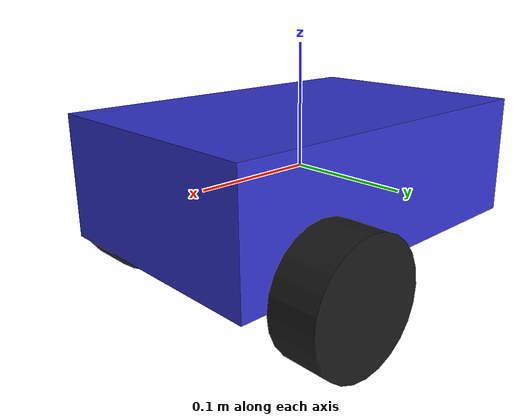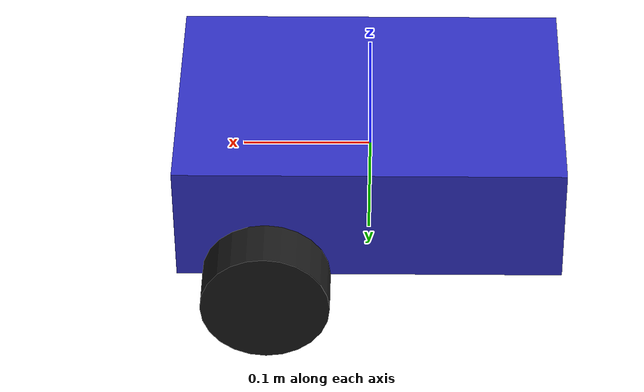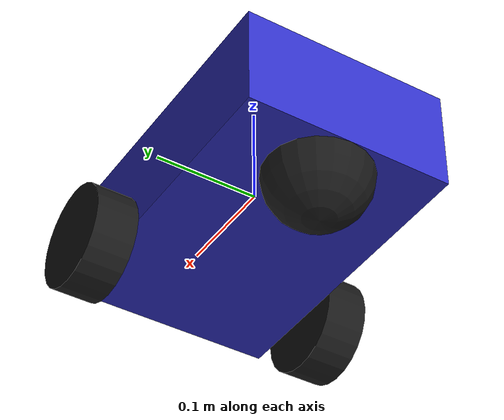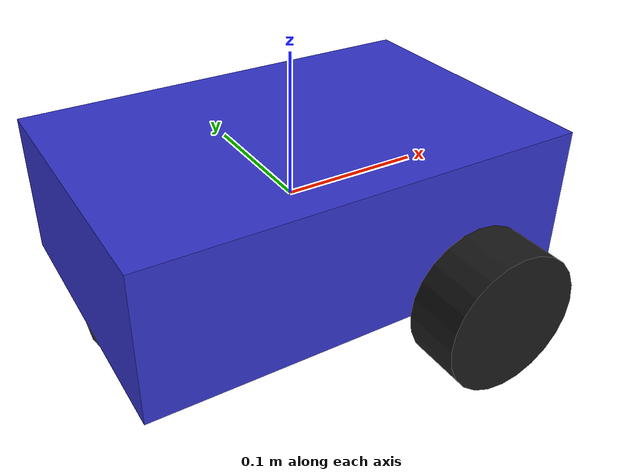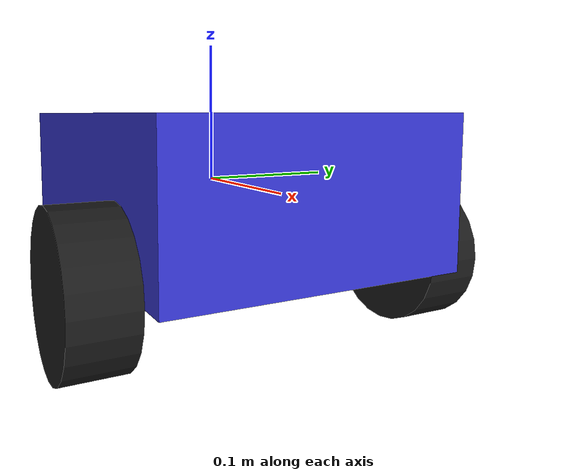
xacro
<?xml version="1.0"?>
<robot xmlns:xacro="http://www.ros.org/wiki/xacro" name="basicbot">

  <!-- Base Link -->
  <link name="base_link">
    <pose>0 0 0.1 0 0 0</pose>

    <inertial>
      <mass value="2.0"/>
      <inertia ixx="0.008333" ixy="0.0" ixz="0.0" iyy="0.016666" iyz="0.0" izz="0.021666"/>
    </inertial>

    <visual name="chassis_visual">
      <geometry>
        <box size="0.3 0.2 0.1"/>
      </geometry>
      <material name="blue">
        <color rgba="0.2 0.2 0.8 1.0"/>
      </material>
    </visual>

    <collision name="chassis_collision">
      <geometry>
        <box size="0.3 0.2 0.1"/>
      </geometry>
    </collision>

    <!-- Caster wheel -->
    <visual name="caster_visual">
      <origin xyz="-0.1 0 -0.05" rpy="0 0 0"/>
      <geometry>
        <sphere radius="0.05"/>
      </geometry>
      <material name="dark">
        <color rgba="0.1 0.1 0.1 1.0"/>
      </material>
    </visual>

    <collision name="caster_collision">
      <origin xyz="-0.1 0 -0.05" rpy="0 0 0"/>
      <geometry>
        <sphere radius="0.05"/>
      </geometry>
    </collision>
  </link>

  <!-- Left Wheel -->
  <link name="left_wheel">
    <inertial>
      <mass value="0.2"/>
      <inertia ixx="0.0001316" ixy="0.0" ixz="0.0" iyy="0.0001316" iyz="0.0" izz="0.00025"/>
    </inertial>
    <visual name="left_wheel_visual">
      <geometry>
        <cylinder radius="0.05" length="0.04"/>
      </geometry>
      <material name="dark">
        <color rgba="0.1 0.1 0.1 1.0"/>
      </material>
    </visual>
    <collision name="left_wheel_collision">
      <geometry>
        <cylinder radius="0.05" length="0.04"/>
      </geometry>
    </collision>
  </link>

  <!-- Right Wheel -->
  <link name="right_wheel">
    <inertial>
      <mass value="0.2"/>
      <inertia ixx="0.0001316" ixy="0.0" ixz="0.0" iyy="0.0001316" iyz="0.0" izz="0.00025"/>
    </inertial>
    <visual name="right_wheel_visual">
      <geometry>
        <cylinder radius="0.05" length="0.04"/>
      </geometry>
      <material name="dark">
        <color rgba="0.1 0.1 0.1 1.0"/>
      </material>
    </visual>
    <collision name="right_wheel_collision">
      <geometry>
        <cylinder radius="0.05" length="0.04"/>
      </geometry>
    </collision>
  </link>

  <!-- Joints -->
  <joint name="left_wheel_joint" type="continuous">
    <parent link="base_link"/>
    <child link="left_wheel"/>
    <origin xyz="0.08 0.12 -0.05" rpy="-1.57079632679 0 0"/>
    <axis xyz="0 0 1"/>
  </joint>

  <joint name="right_wheel_joint" type="continuous">
    <parent link="base_link"/>
    <child link="right_wheel"/>
    <origin xyz="0.08 -0.12 -0.05" rpy="-1.57079632679 0 0"/>
    <axis xyz="0 0 1"/>
  </joint>

  <!-- Gazebo specific elements (plugins and sensors) -->
  <gazebo reference="base_link">
    <!-- Caster Friction (in SDF it was inside the collision tag) -->
    <mu1>0.0</mu1>
    <mu2>0.0</mu2>

    <!-- LiDAR Sensor -->
    <sensor name="lidar" type="gpu_lidar">
      <pose>0.12 0 0.06 0 0 0</pose>
      <topic>/scan</topic>
      <update_rate>10</update_rate>
      <ray>
        <scan>
          <horizontal>
            <samples>360</samples>
            <resolution>1</resolution>
            <min_angle>-3.14159</min_angle>
            <max_angle>3.14159</max_angle>
          </horizontal>
        </scan>
        <range>
          <min>0.1</min>
          <max>8.0</max>
          <resolution>0.01</resolution>
        </range>
      </ray>
      <always_on>1</always_on>
      <visualize>true</visualize>
    </sensor>

    <!-- RGB Camera Sensor -->
    <sensor name="camera" type="camera">
      <pose>0.15 0 0.02 0 0 0</pose>
      <topic>/camera/image_raw</topic>
      <update_rate>30</update_rate>
      <camera>
        <horizontal_fov>1.3962634</horizontal_fov>
        <image>
          <width>640</width>
          <height>480</height>
          <format>R8G8B8</format>
        </image>
        <clip>
          <near>0.05</near>
          <far>100</far>
        </clip>
      </camera>
      <always_on>1</always_on>
      <visualize>true</visualize>
    </sensor>
  </gazebo>

  <gazebo>
    <!-- Diff Drive Plugin -->
    <plugin filename="gz-sim-diff-drive-system" name="gz::sim::systems::DiffDrive">
      <left_joint>left_wheel_joint</left_joint>
      <right_joint>right_wheel_joint</right_joint>
      <wheel_separation>0.24</wheel_separation>
      <wheel_radius>0.05</wheel_radius>
      <odom_publish_frequency>50</odom_publish_frequency>
      <topic>/cmd_vel</topic>
      <odom_topic>/odom</odom_topic>
      <tf_topic>/tf</tf_topic>
      <frame_id>odom</frame_id>
      <child_frame_id>base_link</child_frame_id>
    </plugin>
  </gazebo>
</robot>
